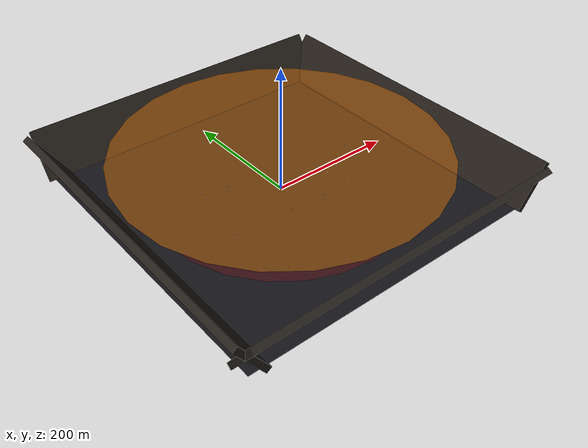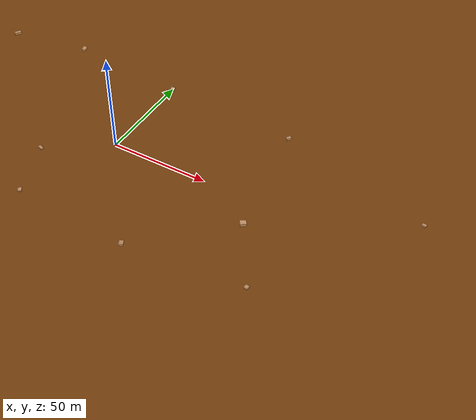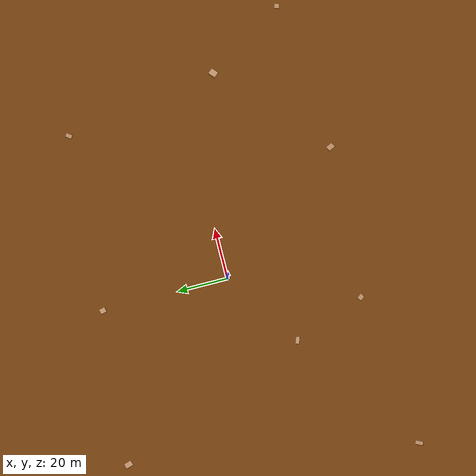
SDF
<?xml version="1.0" ?>
<sdf version="1.9">
  <world name="psr_interior">

    <physics name="psr_ode" type="ode" default="true">
      <gravity>0 0 -1.62</gravity>
      <real_time_factor>1.0</real_time_factor>
      <real_time_update_rate>1000</real_time_update_rate>
      <max_step_size>0.001</max_step_size>
      <ode>
        <solver>
          <!-- Higher iterations for ice+regolith mixed contacts -->
          <type>quick</type>
          <iters>300</iters>
          <precon_iters>0</precon_iters>
          <sor>1.2</sor>
          <use_dynamic_moi_rescaling>true</use_dynamic_moi_rescaling>
        </solver>
        <constraints>
          <cfm>5e-6</cfm>
          <erp>0.15</erp>
          <contact_max_correcting_vel>50</contact_max_correcting_vel>
          <!-- Thin contact layer for ice surface -->
          <contact_surface_layer>0.0005</contact_surface_layer>
        </constraints>
      </ode>
    </physics>

    <scene>
      <!-- Near-total darkness: PSR floor receives no direct solar radiation -->
      <ambient>0.001 0.001 0.002 1</ambient>
      <!-- Black sky - crater walls block most of the sky -->
      <background>0.0 0.0 0.0 1</background>
      <sky>
        <clouds><speed>0</speed></clouds>
      </sky>
      <shadows>true</shadows>
      <fog>
        <type>none</type>
      </fog>
    </scene>

    <light name="earthshine_fill" type="directional">
      <cast_shadows>false</cast_shadows>
      <direction>0.05 0.1 -1</direction>
      <!-- Slight blue tint of Earthshine (reflected atmosphere) -->
      <diffuse>0.002 0.002 0.003 1</diffuse>
      <specular>0.0 0.0 0.0 1</specular>
    </light>

    <!-- Dim ambient point light simulating rover headlights (for visual debug) -->
    <!-- In real mission, rover carries its own lighting; this is scene ambient only -->
    <light name="rover_area_light" type="point">
      <cast_shadows>true</cast_shadows>
      <pose>0 0 0.5 0 0 0</pose>
      <diffuse>0.015 0.012 0.010 1</diffuse>
      <specular>0.005 0.004 0.003 1</specular>
      <attenuation>
        <range>20</range>
        <constant>0.5</constant>
        <linear>0.05</linear>
        <quadratic>0.02</quadratic>
      </attenuation>
    </light>

    <!-- ================================================================
         PLUGINS
         ================================================================ -->
    <plugin filename="liblunargravity_plugin.so" name="lunar_gravity_plugin">
      <gravity_z>-1.62</gravity_z>
    </plugin>

    <plugin filename="libregolith_terrain_plugin.so" name="psr_terrain_plugin">
      <!-- Ice-contaminated regolith parameters -->
      <cohesion_kPa>0.08</cohesion_kPa>        <!-- lower cohesion: ice weakens bonds -->
      <friction_angle_deg>28.0</friction_angle_deg>  <!-- lower angle for icy surface -->
      <deformation_exponent>1.3</deformation_exponent>
      <sinkage_modulus_kPa>3.0</sinkage_modulus_kPa>
      <static_friction>0.45</static_friction>   <!-- reduced: ice contamination -->
      <dynamic_friction>0.35</dynamic_friction>
      <!-- PSR-specific metadata (read by temperature/thermal plugins) -->
      <surface_temperature_K>40.0</surface_temperature_K>
      <ice_fraction>0.085</ice_fraction>        <!-- 8.5% water ice by mass (LCROSS est.) -->
      <regolith_type>psr_icy</regolith_type>
    </plugin>

    <!-- Temperature metadata plugin - records thermal state for thermal model -->
    <plugin filename="libpsr_temperature_plugin.so" name="psr_temperature_plugin">
      <ambient_temperature_K>40.0</ambient_temperature_K>
      <surface_temperature_K>40.0</surface_temperature_K>
      <!-- PSR never exceeds ~100K even at crater rim shadow boundary -->
      <max_temperature_K>100.0</max_temperature_K>
      <thermal_inertia>50.0</thermal_inertia>   <!-- tiu, typical PSR value -->
    </plugin>

    <model name="psr_floor">
      <static>true</static>
      <link name="floor_link">
        <collision name="floor_collision">
          <geometry>
            <box>
              <size>500 500 1</size>
            </box>
          </geometry>
          <surface>
            <friction>
              <ode>
                <!-- Ice-contaminated regolith: significantly reduced friction -->
                <mu>0.45</mu>
                <mu2>0.40</mu2>
                <fdir1>1 0 0</fdir1>
                <slip1>0.002</slip1>
                <slip2>0.002</slip2>
              </ode>
              <bullet>
                <friction>0.45</friction>
                <friction2>0.40</friction2>
                <rolling_friction>0.03</rolling_friction>
              </bullet>
            </friction>
            <bounce>
              <restitution_coefficient>0.02</restitution_coefficient>
              <threshold>100000</threshold>
            </bounce>
            <contact>
              <ode>
                <soft_cfm>2e-5</soft_cfm>
                <soft_erp>0.1</soft_erp>
                <kp>8e5</kp>   <!-- softer than dry regolith -->
                <kd>80</kd>
                <max_vel>0.05</max_vel>
                <min_depth>0.001</min_depth>
              </ode>
            </contact>
          </surface>
        </collision>
        <visual name="floor_visual">
          <pose>0 0 -0.5 0 0 0</pose>
          <geometry>
            <box>
              <size>500 500 1</size>
            </box>
          </geometry>
          <material>
            <!-- Dark ice-contaminated regolith: very low albedo ~0.06-0.10 -->
            <ambient>0.06 0.06 0.07 1</ambient>
            <diffuse>0.08 0.08 0.10 1</diffuse>
            <specular>0.04 0.04 0.06 1</specular>   <!-- slight specular: frost patches -->
          </material>
        </visual>
        <pose>0 0 0 0 0 0</pose>
      </link>
    </model>

    <model name="crater_wall_north">
      <static>true</static>
      <pose>0 250 35 -0.6109 0 0</pose>  <!-- 35° tilt inward -->
      <link name="wall_link">
        <collision name="wall_collision">
          <geometry>
            <box><size>520 10 80</size></box>
          </geometry>
          <surface>
            <friction>
              <ode><mu>0.8</mu><mu2>0.75</mu2></ode>
            </friction>
          </surface>
        </collision>
        <visual name="wall_visual">
          <geometry>
            <box><size>520 10 80</size></box>
          </geometry>
          <material>
            <ambient>0.09 0.08 0.07 1</ambient>
            <diffuse>0.14 0.12 0.10 1</diffuse>
            <specular>0.01 0.01 0.01 1</specular>
          </material>
        </visual>
      </link>
    </model>

    <model name="crater_wall_south">
      <static>true</static>
      <pose>0 -250 35 0.6109 0 0</pose>
      <link name="wall_link">
        <collision name="wall_collision">
          <geometry>
            <box><size>520 10 80</size></box>
          </geometry>
          <surface>
            <friction>
              <ode><mu>0.8</mu><mu2>0.75</mu2></ode>
            </friction>
          </surface>
        </collision>
        <visual name="wall_visual">
          <geometry>
            <box><size>520 10 80</size></box>
          </geometry>
          <material>
            <ambient>0.09 0.08 0.07 1</ambient>
            <diffuse>0.14 0.12 0.10 1</diffuse>
            <specular>0.01 0.01 0.01 1</specular>
          </material>
        </visual>
      </link>
    </model>

    <model name="crater_wall_east">
      <static>true</static>
      <pose>250 0 35 0 0.6109 0</pose>
      <link name="wall_link">
        <collision name="wall_collision">
          <geometry>
            <box><size>10 520 80</size></box>
          </geometry>
          <surface>
            <friction>
              <ode><mu>0.8</mu><mu2>0.75</mu2></ode>
            </friction>
          </surface>
        </collision>
        <visual name="wall_visual">
          <geometry>
            <box><size>10 520 80</size></box>
          </geometry>
          <material>
            <ambient>0.09 0.08 0.07 1</ambient>
            <diffuse>0.14 0.12 0.10 1</diffuse>
            <specular>0.01 0.01 0.01 1</specular>
          </material>
        </visual>
      </link>
    </model>

    <model name="crater_wall_west">
      <static>true</static>
      <pose>-250 0 35 0 -0.6109 0</pose>
      <link name="wall_link">
        <collision name="wall_collision">
          <geometry>
            <box><size>10 520 80</size></box>
          </geometry>
          <surface>
            <friction>
              <ode><mu>0.8</mu><mu2>0.75</mu2></ode>
            </friction>
          </surface>
        </collision>
        <visual name="wall_visual">
          <geometry>
            <box><size>10 520 80</size></box>
          </geometry>
          <material>
            <ambient>0.09 0.08 0.07 1</ambient>
            <diffuse>0.14 0.12 0.10 1</diffuse>
            <specular>0.01 0.01 0.01 1</specular>
          </material>
        </visual>
      </link>
    </model>

    <!-- Corridor 1: Main east-west traverse path (y ≈ 0, gaps at x=±50,±100,±150) -->

    <!-- Row 1: y = -60 to -40 (obstacle row south of corridor) -->
    <model name="ice_block_s01">
      <static>true</static>
      <pose>-120 -50 0.4 0.1 0 0.3</pose>
      <link name="link">
        <collision name="c"><geometry><box><size>2.5 2.0 0.8</size></box></geometry>
          <surface><friction><ode><mu>0.4</mu><mu2>0.38</mu2></ode></friction></surface>
        </collision>
        <visual name="v"><geometry><box><size>2.5 2.0 0.8</size></box></geometry>
          <material><ambient>0.4 0.45 0.5 1</ambient><diffuse>0.5 0.55 0.65 1</diffuse><specular>0.3 0.35 0.4 1</specular></material>
        </visual>
      </link>
    </model>

    <model name="ice_block_s02">
      <static>true</static>
      <pose>-80 -55 0.6 0 0.15 1.1</pose>
      <link name="link">
        <collision name="c"><geometry><box><size>3.0 1.5 1.2</size></box></geometry>
          <surface><friction><ode><mu>0.42</mu><mu2>0.40</mu2></ode></friction></surface>
        </collision>
        <visual name="v"><geometry><box><size>3.0 1.5 1.2</size></box></geometry>
          <material><ambient>0.38 0.42 0.48 1</ambient><diffuse>0.48 0.52 0.60 1</diffuse><specular>0.28 0.32 0.38 1</specular></material>
        </visual>
      </link>
    </model>

    <model name="ice_block_s03">
      <static>true</static>
      <pose>-20 -48 0.3 0.05 0 0.6</pose>
      <link name="link">
        <collision name="c"><geometry><box><size>1.8 2.2 0.6</size></box></geometry>
          <surface><friction><ode><mu>0.41</mu><mu2>0.39</mu2></ode></friction></surface>
        </collision>
        <visual name="v"><geometry><box><size>1.8 2.2 0.6</size></box></geometry>
          <material><ambient>0.42 0.46 0.52 1</ambient><diffuse>0.52 0.56 0.64 1</diffuse><specular>0.32 0.35 0.40 1</specular></material>
        </visual>
      </link>
    </model>

    <model name="ice_block_s04">
      <static>true</static>
      <pose>40 -52 0.5 0.12 0.08 2.0</pose>
      <link name="link">
        <collision name="c"><geometry><box><size>2.8 2.0 1.0</size></box></geometry>
          <surface><friction><ode><mu>0.43</mu><mu2>0.41</mu2></ode></friction></surface>
        </collision>
        <visual name="v"><geometry><box><size>2.8 2.0 1.0</size></box></geometry>
          <material><ambient>0.40 0.44 0.50 1</ambient><diffuse>0.50 0.54 0.62 1</diffuse><specular>0.30 0.33 0.38 1</specular></material>
        </visual>
      </link>
    </model>

    <model name="ice_block_s05">
      <static>true</static>
      <pose>100 -46 0.4 0 0 1.4</pose>
      <link name="link">
        <collision name="c"><geometry><box><size>2.0 1.8 0.8</size></box></geometry>
          <surface><friction><ode><mu>0.40</mu><mu2>0.38</mu2></ode></friction></surface>
        </collision>
        <visual name="v"><geometry><box><size>2.0 1.8 0.8</size></box></geometry>
          <material><ambient>0.41 0.45 0.51 1</ambient><diffuse>0.51 0.55 0.63 1</diffuse><specular>0.29 0.33 0.39 1</specular></material>
        </visual>
      </link>
    </model>

    <!-- Row 2: y = +40 to +60 (obstacle row north of corridor) -->
    <model name="ice_block_n01">
      <static>true</static>
      <pose>-100 48 0.7 0.08 0 0.9</pose>
      <link name="link">
        <collision name="c"><geometry><box><size>3.5 1.5 1.4</size></box></geometry>
          <surface><friction><ode><mu>0.41</mu><mu2>0.39</mu2></ode></friction></surface>
        </collision>
        <visual name="v"><geometry><box><size>3.5 1.5 1.4</size></box></geometry>
          <material><ambient>0.43 0.47 0.53 1</ambient><diffuse>0.53 0.57 0.65 1</diffuse><specular>0.31 0.35 0.41 1</specular></material>
        </visual>
      </link>
    </model>

    <model name="ice_block_n02">
      <static>true</static>
      <pose>-60 55 0.5 0 0.1 0.3</pose>
      <link name="link">
        <collision name="c"><geometry><box><size>2.0 3.0 1.0</size></box></geometry>
          <surface><friction><ode><mu>0.44</mu><mu2>0.42</mu2></ode></friction></surface>
        </collision>
        <visual name="v"><geometry><box><size>2.0 3.0 1.0</size></box></geometry>
          <material><ambient>0.44 0.48 0.54 1</ambient><diffuse>0.54 0.58 0.66 1</diffuse><specular>0.30 0.34 0.40 1</specular></material>
        </visual>
      </link>
    </model>

    <model name="ice_block_n03">
      <static>true</static>
      <pose>0 50 0.4 0.1 0.05 1.8</pose>
      <link name="link">
        <collision name="c"><geometry><box><size>2.4 2.0 0.8</size></box></geometry>
          <surface><friction><ode><mu>0.40</mu><mu2>0.38</mu2></ode></friction></surface>
        </collision>
        <visual name="v"><geometry><box><size>2.4 2.0 0.8</size></box></geometry>
          <material><ambient>0.45 0.49 0.55 1</ambient><diffuse>0.55 0.59 0.67 1</diffuse><specular>0.29 0.33 0.39 1</specular></material>
        </visual>
      </link>
    </model>

    <model name="ice_block_n04">
      <static>true</static>
      <pose>70 46 0.6 0 0 2.5</pose>
      <link name="link">
        <collision name="c"><geometry><box><size>1.6 2.5 1.2</size></box></geometry>
          <surface><friction><ode><mu>0.43</mu><mu2>0.41</mu2></ode></friction></surface>
        </collision>
        <visual name="v"><geometry><box><size>1.6 2.5 1.2</size></box></geometry>
          <material><ambient>0.42 0.46 0.52 1</ambient><diffuse>0.52 0.56 0.64 1</diffuse><specular>0.28 0.32 0.38 1</specular></material>
        </visual>
      </link>
    </model>

    <!-- Scattered obstacles across northern half of PSR -->
    <model name="ice_block_mid01">
      <static>true</static>
      <pose>-150 20 0.5 0.07 0 0.4</pose>
      <link name="link">
        <collision name="c"><geometry><box><size>2.2 1.8 1.0</size></box></geometry>
          <surface><friction><ode><mu>0.42</mu><mu2>0.40</mu2></ode></friction></surface>
        </collision>
        <visual name="v"><geometry><box><size>2.2 1.8 1.0</size></box></geometry>
          <material><ambient>0.40 0.44 0.50 1</ambient><diffuse>0.50 0.54 0.62 1</diffuse><specular>0.30 0.34 0.40 1</specular></material>
        </visual>
      </link>
    </model>

    <model name="ice_block_mid02">
      <static>true</static>
      <pose>-30 -20 0.3 0 0.12 1.2</pose>
      <link name="link">
        <collision name="c"><geometry><box><size>1.5 2.8 0.6</size></box></geometry>
          <surface><friction><ode><mu>0.41</mu><mu2>0.39</mu2></ode></friction></surface>
        </collision>
        <visual name="v"><geometry><box><size>1.5 2.8 0.6</size></box></geometry>
          <material><ambient>0.44 0.48 0.54 1</ambient><diffuse>0.54 0.58 0.66 1</diffuse><specular>0.32 0.36 0.42 1</specular></material>
        </visual>
      </link>
    </model>

    <model name="ice_block_mid03">
      <static>true</static>
      <pose>80 -15 0.8 0.05 0.1 0.7</pose>
      <link name="link">
        <collision name="c"><geometry><box><size>3.0 2.5 1.6</size></box></geometry>
          <surface><friction><ode><mu>0.43</mu><mu2>0.41</mu2></ode></friction></surface>
        </collision>
        <visual name="v"><geometry><box><size>3.0 2.5 1.6</size></box></geometry>
          <material><ambient>0.46 0.50 0.56 1</ambient><diffuse>0.56 0.60 0.68 1</diffuse><specular>0.33 0.37 0.43 1</specular></material>
        </visual>
      </link>
    </model>

    <model name="ice_block_mid04">
      <static>true</static>
      <pose>150 25 0.4 0 0 3.0</pose>
      <link name="link">
        <collision name="c"><geometry><box><size>2.0 1.5 0.8</size></box></geometry>
          <surface><friction><ode><mu>0.40</mu><mu2>0.38</mu2></ode></friction></surface>
        </collision>
        <visual name="v"><geometry><box><size>2.0 1.5 0.8</size></box></geometry>
          <material><ambient>0.41 0.45 0.51 1</ambient><diffuse>0.51 0.55 0.63 1</diffuse><specular>0.29 0.33 0.39 1</specular></material>
        </visual>
      </link>
    </model>

    <model name="frost_patch_01">
      <static>true</static>
      <pose>-80 10 0.005 0 0 0.4</pose>
      <link name="link">
        <collision name="c">
          <geometry><box><size>15 12 0.01</size></box></geometry>
          <surface>
            <friction>
              <ode>
                <!-- Near-ice friction: very low -->
                <mu>0.25</mu>
                <mu2>0.22</mu2>
              </ode>
            </friction>
          </surface>
        </collision>
        <visual name="v">
          <geometry><box><size>15 12 0.01</size></box></geometry>
          <material>
            <!-- Translucent ice appearance -->
            <ambient>0.7 0.75 0.85 0.6</ambient>
            <diffuse>0.8 0.85 0.95 0.6</diffuse>
            <specular>0.9 0.92 0.96 1</specular>
            <emissive>0.01 0.01 0.015 1</emissive>
          </material>
        </visual>
      </link>
    </model>

    <model name="frost_patch_02">
      <static>true</static>
      <pose>60 -30 0.005 0 0 1.2</pose>
      <link name="link">
        <collision name="c">
          <geometry><box><size>8 20 0.01</size></box></geometry>
          <surface>
            <friction>
              <ode><mu>0.22</mu><mu2>0.20</mu2></ode>
            </friction>
          </surface>
        </collision>
        <visual name="v">
          <geometry><box><size>8 20 0.01</size></box></geometry>
          <material>
            <ambient>0.68 0.73 0.83 0.55</ambient>
            <diffuse>0.78 0.83 0.93 0.55</diffuse>
            <specular>0.88 0.90 0.94 1</specular>
            <emissive>0.008 0.008 0.012 1</emissive>
          </material>
        </visual>
      </link>
    </model>

    <model name="frost_patch_03">
      <static>true</static>
      <pose>-160 -60 0.005 0 0 2.1</pose>
      <link name="link">
        <collision name="c">
          <geometry><box><size>25 18 0.01</size></box></geometry>
          <surface>
            <friction>
              <ode><mu>0.20</mu><mu2>0.18</mu2></ode>
            </friction>
          </surface>
        </collision>
        <visual name="v">
          <geometry><box><size>25 18 0.01</size></box></geometry>
          <material>
            <ambient>0.72 0.77 0.87 0.65</ambient>
            <diffuse>0.82 0.87 0.97 0.65</diffuse>
            <specular>0.92 0.94 0.98 1</specular>
            <emissive>0.012 0.012 0.018 1</emissive>
          </material>
        </visual>
      </link>
    </model>

    <model name="comms_shadow_marker_center">
      <static>true</static>
      <pose>0 0 0.02 0 0 0</pose>
      <link name="link">
        <visual name="v">
          <geometry>
            <cylinder><radius>200.0</radius><length>0.02</length></cylinder>
          </geometry>
          <material>
            <!-- Semi-transparent red overlay: communication shadow zone -->
            <ambient>0.5 0.0 0.0 0.15</ambient>
            <diffuse>0.8 0.0 0.0 0.15</diffuse>
            <specular>0.0 0.0 0.0 1</specular>
          </material>
        </visual>
      </link>
    </model>

    <!-- Comms boundary marker ring at crater rim -->
    <model name="comms_boundary_ring">
      <static>true</static>
      <pose>0 0 65 0 0 0</pose>
      <link name="link">
        <visual name="v">
          <geometry>
            <cylinder><radius>252.0</radius><length>0.5</length></cylinder>
          </geometry>
          <material>
            <ambient>0.8 0.4 0.0 0.4</ambient>
            <diffuse>1.0 0.5 0.0 0.4</diffuse>
            <specular>0.0 0.0 0.0 1</specular>
          </material>
        </visual>
      </link>
    </model>

    <model name="corridor_marker_A">
      <static>true</static>
      <pose>-50 0 0.015 0 0 0</pose>
      <link name="link">
        <visual name="v">
          <geometry>
            <cylinder><radius>4.0</radius><length>0.01</length></cylinder>
          </geometry>
          <material>
            <ambient>0.0 0.6 0.0 0.3</ambient>
            <diffuse>0.0 0.8 0.0 0.3</diffuse>
          </material>
        </visual>
      </link>
    </model>

    <model name="corridor_marker_B">
      <static>true</static>
      <pose>25 0 0.015 0 0 0</pose>
      <link name="link">
        <visual name="v">
          <geometry>
            <cylinder><radius>6.0</radius><length>0.01</length></cylinder>
          </geometry>
          <material>
            <ambient>0.0 0.6 0.0 0.3</ambient>
            <diffuse>0.0 0.8 0.0 0.3</diffuse>
          </material>
        </visual>
      </link>
    </model>

    <!-- ================================================================
         GUI CAMERA - tight framing of PSR interior
         ================================================================ -->
    <gui fullscreen="0">
      <camera name="user_camera">
        <pose>0 -400 200 0 0.5 1.57</pose>
        <view_controller>orbit</view_controller>
        <projection_type>perspective</projection_type>
      </camera>
    </gui>

  </world>
</sdf>
